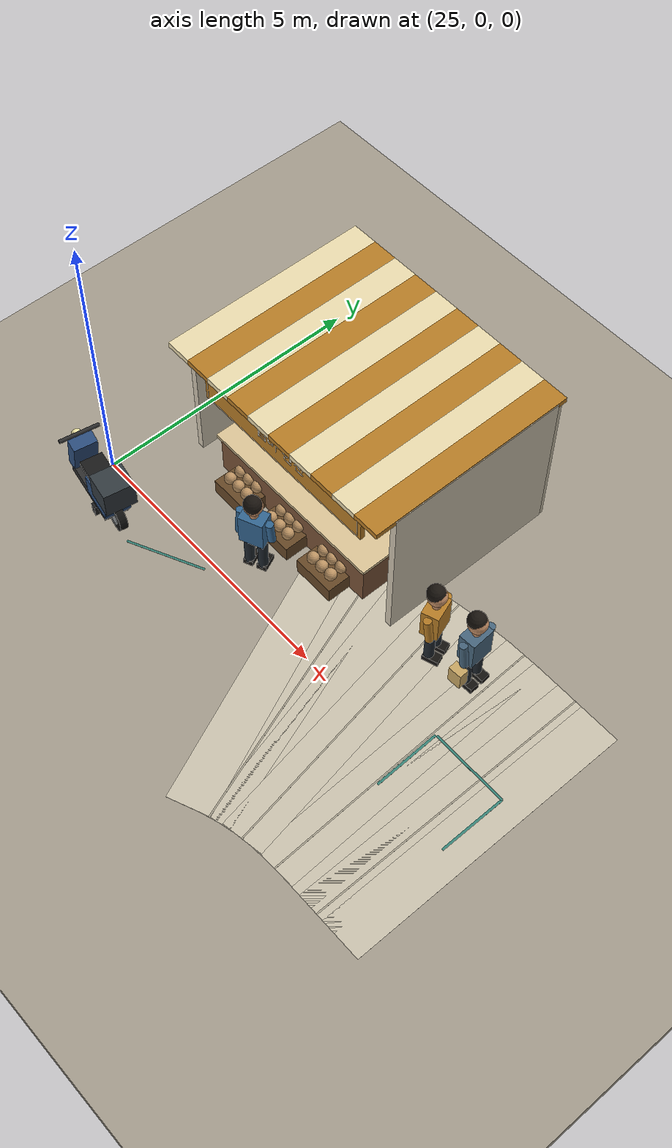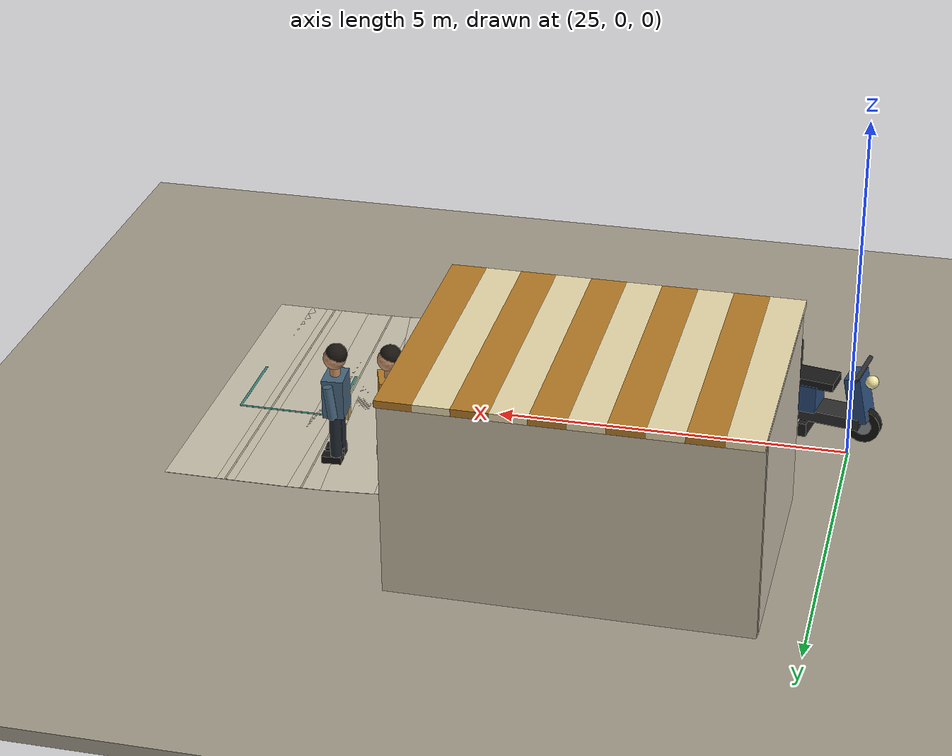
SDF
<sdf version="1.10">
 <world name="swan_town">
  <model name="ground_plane">
   <pose>-14 30 -0.025 0 0 0</pose>
   <static>true</static>
   <link name="link">
    <collision name="collision">
     <geometry><plane><normal>0 0 1</normal><size>100 100</size></plane></geometry>
    </collision>
    <visual name="visual">
     <geometry><plane><normal>0 0 1</normal><size>100 100</size></plane></geometry>
     <material><ambient>0.3 0.5 0.2 1</ambient><diffuse>0.3 0.5 0.2 1</diffuse></material>
    </visual>
   </link>
  </model>
  <model name="ground">
   <static>true</static>
   <pose>15 0 -0.1 0 0 0</pose>
   <link name="body">
    <collision name="box_collision"><geometry><box><size>46 24 0.2</size></box></geometry></collision>
    <visual name="box_visual">
     <geometry><box><size>46 24 0.2</size></box></geometry>
     <material><ambient>0.64 0.61 0.55 1</ambient><diffuse>0.64 0.61 0.55 1</diffuse></material>
    </visual>
   </link>
  </model>
  <model name="market_paving_63">
   <static>true</static>
   <pose>29.75 -0.54833 0.002 0 0 0.40225</pose>
   <link name="body">
    <visual name="box_visual">
     <geometry><box><size>0.75 5.2 0.004</size></box></geometry>
     <material><ambient>0.79 0.76 0.68 1</ambient><diffuse>0.79 0.76 0.68 1</diffuse></material>
    </visual>
   </link>
  </model>
  <model name="market_paving_64">
   <static>true</static>
   <pose>30.25 -0.35543 0.002 0 0 0.33122</pose>
   <link name="body">
    <visual name="box_visual">
     <geometry><box><size>0.75 5.2 0.004</size></box></geometry>
     <material><ambient>0.79 0.76 0.68 1</ambient><diffuse>0.79 0.76 0.68 1</diffuse></material>
    </visual>
   </link>
  </model>
  <model name="paving_joint_64">
   <static>true</static>
   <pose>30.25 -0.35543 0.0045 0 0 0.33122</pose>
   <link name="body">
    <visual name="box_visual">
     <geometry><box><size>0.025 5.2 0.001</size></box></geometry>
     <material><ambient>0.67 0.64 0.57 1</ambient><diffuse>0.67 0.64 0.57 1</diffuse></material>
    </visual>
   </link>
  </model>
  <model name="market_paving_65">
   <static>true</static>
   <pose>30.75 -0.20586 0.002 0 0 0.2486</pose>
   <link name="body">
    <visual name="box_visual">
     <geometry><box><size>0.75 5.2 0.004</size></box></geometry>
     <material><ambient>0.79 0.76 0.68 1</ambient><diffuse>0.79 0.76 0.68 1</diffuse></material>
    </visual>
   </link>
  </model>
  <model name="market_paving_66">
   <static>true</static>
   <pose>31.25 -0.10125 0.002 0 0 0.16424</pose>
   <link name="body">
    <visual name="box_visual">
     <geometry><box><size>0.75 5.2 0.004</size></box></geometry>
     <material><ambient>0.79 0.76 0.68 1</ambient><diffuse>0.79 0.76 0.68 1</diffuse></material>
    </visual>
   </link>
  </model>
  <model name="paving_joint_66">
   <static>true</static>
   <pose>31.25 -0.10125 0.0045 0 0 0.16424</pose>
   <link name="body">
    <visual name="box_visual">
     <geometry><box><size>0.025 5.2 0.001</size></box></geometry>
     <material><ambient>0.67 0.64 0.57 1</ambient><diffuse>0.67 0.64 0.57 1</diffuse></material>
    </visual>
   </link>
  </model>
  <model name="market_paving_67">
   <static>true</static>
   <pose>31.75 -0.038143 0.002 0 0 0.089204</pose>
   <link name="body">
    <visual name="box_visual">
     <geometry><box><size>0.75 5.2 0.004</size></box></geometry>
     <material><ambient>0.79 0.76 0.68 1</ambient><diffuse>0.79 0.76 0.68 1</diffuse></material>
    </visual>
   </link>
  </model>
  <model name="market_paving_68">
   <static>true</static>
   <pose>32.25 -0.0084221 0.002 0 0 0.033398</pose>
   <link name="body">
    <visual name="box_visual">
     <geometry><box><size>0.75 5.2 0.004</size></box></geometry>
     <material><ambient>0.79 0.76 0.68 1</ambient><diffuse>0.79 0.76 0.68 1</diffuse></material>
    </visual>
   </link>
  </model>
  <model name="paving_joint_68">
   <static>true</static>
   <pose>32.25 -0.0084221 0.0045 0 0 0.033398</pose>
   <link name="body">
    <visual name="box_visual">
     <geometry><box><size>0.025 5.2 0.001</size></box></geometry>
     <material><ambient>0.67 0.64 0.57 1</ambient><diffuse>0.67 0.64 0.57 1</diffuse></material>
    </visual>
   </link>
  </model>
  <model name="market_paving_69">
   <static>true</static>
   <pose>32.75 -0.00031537 0.002 0 0 0.003781</pose>
   <link name="body">
    <visual name="box_visual">
     <geometry><box><size>0.75 5.2 0.004</size></box></geometry>
     <material><ambient>0.79 0.76 0.68 1</ambient><diffuse>0.79 0.76 0.68 1</diffuse></material>
    </visual>
   </link>
  </model>
  <model name="market_paving_70">
   <static>true</static>
   <pose>33.25 0 0.002 0 0 0</pose>
   <link name="body">
    <visual name="box_visual">
     <geometry><box><size>0.75 5.2 0.004</size></box></geometry>
     <material><ambient>0.79 0.76 0.68 1</ambient><diffuse>0.79 0.76 0.68 1</diffuse></material>
    </visual>
   </link>
  </model>
  <model name="paving_joint_70">
   <static>true</static>
   <pose>33.25 0 0.0045 0 0 0</pose>
   <link name="body">
    <visual name="box_visual">
     <geometry><box><size>0.025 5.2 0.001</size></box></geometry>
     <material><ambient>0.67 0.64 0.57 1</ambient><diffuse>0.67 0.64 0.57 1</diffuse></material>
    </visual>
   </link>
  </model>
  <model name="market_paving_71">
   <static>true</static>
   <pose>33.75 0 0.002 0 0 0</pose>
   <link name="body">
    <visual name="box_visual">
     <geometry><box><size>0.75 5.2 0.004</size></box></geometry>
     <material><ambient>0.79 0.76 0.68 1</ambient><diffuse>0.79 0.76 0.68 1</diffuse></material>
    </visual>
   </link>
  </model>
  <model name="stall_03">
   <static>true</static>
   <pose>28 3.0211 0 0 0 0</pose>
   <link name="body">
    <collision name="rear_collision">
     <pose>0 1.65 1.4 0 0 0</pose>
     <geometry><box><size>4.8 0.15 2.8</size></box></geometry>
    </collision>
    <visual name="rear_visual">
     <pose>0 1.65 1.4 0 0 0</pose>
     <geometry><box><size>4.8 0.15 2.8</size></box></geometry>
     <material><ambient>0.78 0.74 0.65 1</ambient><diffuse>0.78 0.74 0.65 1</diffuse></material>
    </visual>
    <collision name="side_-2.35_collision">
     <pose>-2.35 0 1.4 0 0 0</pose>
     <geometry><box><size>0.12 3.3 2.8</size></box></geometry>
    </collision>
    <visual name="side_-2.35_visual">
     <pose>-2.35 0 1.4 0 0 0</pose>
     <geometry><box><size>0.12 3.3 2.8</size></box></geometry>
     <material><ambient>0.81 0.77 0.69 1</ambient><diffuse>0.81 0.77 0.69 1</diffuse></material>
    </visual>
    <collision name="side_2.35_collision">
     <pose>2.35 0 1.4 0 0 0</pose>
     <geometry><box><size>0.12 3.3 2.8</size></box></geometry>
    </collision>
    <visual name="side_2.35_visual">
     <pose>2.35 0 1.4 0 0 0</pose>
     <geometry><box><size>0.12 3.3 2.8</size></box></geometry>
     <material><ambient>0.81 0.77 0.69 1</ambient><diffuse>0.81 0.77 0.69 1</diffuse></material>
    </visual>
    <collision name="counter_collision">
     <pose>0 -1.22 0.4 0 0 0</pose>
     <geometry><box><size>3.5 0.85 0.8</size></box></geometry>
    </collision>
    <visual name="counter_visual">
     <pose>0 -1.22 0.4 0 0 0</pose>
     <geometry><box><size>3.5 0.85 0.8</size></box></geometry>
     <material><ambient>0.47 0.32 0.21 1</ambient><diffuse>0.47 0.32 0.21 1</diffuse></material>
    </visual>
    <collision name="counter_top_collision">
     <pose>0 -1.22 0.83 0 0 0</pose>
     <geometry><box><size>3.6 0.95 0.06</size></box></geometry>
    </collision>
    <visual name="counter_top_visual">
     <pose>0 -1.22 0.83 0 0 0</pose>
     <geometry><box><size>3.6 0.95 0.06</size></box></geometry>
     <material><ambient>0.86 0.77 0.59 1</ambient><diffuse>0.86 0.77 0.59 1</diffuse></material>
    </visual>
    <collision name="awning_0_collision">
     <pose>-2.16 -0.1 2.78 0 0 0</pose>
     <geometry><box><size>0.48 3.85 0.1</size></box></geometry>
    </collision>
    <visual name="awning_0_visual">
     <pose>-2.16 -0.1 2.78 0 0 0</pose>
     <geometry><box><size>0.48 3.85 0.1</size></box></geometry>
     <material><ambient>0.92 0.86 0.68 1</ambient><diffuse>0.92 0.86 0.68 1</diffuse></material>
    </visual>
    <collision name="awning_1_collision">
     <pose>-1.68 -0.1 2.78 0 0 0</pose>
     <geometry><box><size>0.48 3.85 0.1</size></box></geometry>
    </collision>
    <visual name="awning_1_visual">
     <pose>-1.68 -0.1 2.78 0 0 0</pose>
     <geometry><box><size>0.48 3.85 0.1</size></box></geometry>
     <material><ambient>0.72 0.49 0.15 1</ambient><diffuse>0.72 0.49 0.15 1</diffuse></material>
    </visual>
    <collision name="awning_2_collision">
     <pose>-1.2 -0.1 2.78 0 0 0</pose>
     <geometry><box><size>0.48 3.85 0.1</size></box></geometry>
    </collision>
    <visual name="awning_2_visual">
     <pose>-1.2 -0.1 2.78 0 0 0</pose>
     <geometry><box><size>0.48 3.85 0.1</size></box></geometry>
     <material><ambient>0.92 0.86 0.68 1</ambient><diffuse>0.92 0.86 0.68 1</diffuse></material>
    </visual>
    <collision name="awning_3_collision">
     <pose>-0.72 -0.1 2.78 0 0 0</pose>
     <geometry><box><size>0.48 3.85 0.1</size></box></geometry>
    </collision>
    <visual name="awning_3_visual">
     <pose>-0.72 -0.1 2.78 0 0 0</pose>
     <geometry><box><size>0.48 3.85 0.1</size></box></geometry>
     <material><ambient>0.72 0.49 0.15 1</ambient><diffuse>0.72 0.49 0.15 1</diffuse></material>
    </visual>
    <collision name="awning_4_collision">
     <pose>-0.24 -0.1 2.78 0 0 0</pose>
     <geometry><box><size>0.48 3.85 0.1</size></box></geometry>
    </collision>
    <visual name="awning_4_visual">
     <pose>-0.24 -0.1 2.78 0 0 0</pose>
     <geometry><box><size>0.48 3.85 0.1</size></box></geometry>
     <material><ambient>0.92 0.86 0.68 1</ambient><diffuse>0.92 0.86 0.68 1</diffuse></material>
    </visual>
    <collision name="awning_5_collision">
     <pose>0.24 -0.1 2.78 0 0 0</pose>
     <geometry><box><size>0.48 3.85 0.1</size></box></geometry>
    </collision>
    <visual name="awning_5_visual">
     <pose>0.24 -0.1 2.78 0 0 0</pose>
     <geometry><box><size>0.48 3.85 0.1</size></box></geometry>
     <material><ambient>0.72 0.49 0.15 1</ambient><diffuse>0.72 0.49 0.15 1</diffuse></material>
    </visual>
    <collision name="awning_6_collision">
     <pose>0.72 -0.1 2.78 0 0 0</pose>
     <geometry><box><size>0.48 3.85 0.1</size></box></geometry>
    </collision>
    <visual name="awning_6_visual">
     <pose>0.72 -0.1 2.78 0 0 0</pose>
     <geometry><box><size>0.48 3.85 0.1</size></box></geometry>
     <material><ambient>0.92 0.86 0.68 1</ambient><diffuse>0.92 0.86 0.68 1</diffuse></material>
    </visual>
    <collision name="awning_7_collision">
     <pose>1.2 -0.1 2.78 0 0 0</pose>
     <geometry><box><size>0.48 3.85 0.1</size></box></geometry>
    </collision>
    <visual name="awning_7_visual">
     <pose>1.2 -0.1 2.78 0 0 0</pose>
     <geometry><box><size>0.48 3.85 0.1</size></box></geometry>
     <material><ambient>0.72 0.49 0.15 1</ambient><diffuse>0.72 0.49 0.15 1</diffuse></material>
    </visual>
    <collision name="awning_8_collision">
     <pose>1.68 -0.1 2.78 0 0 0</pose>
     <geometry><box><size>0.48 3.85 0.1</size></box></geometry>
    </collision>
    <visual name="awning_8_visual">
     <pose>1.68 -0.1 2.78 0 0 0</pose>
     <geometry><box><size>0.48 3.85 0.1</size></box></geometry>
     <material><ambient>0.92 0.86 0.68 1</ambient><diffuse>0.92 0.86 0.68 1</diffuse></material>
    </visual>
    <collision name="awning_9_collision">
     <pose>2.16 -0.1 2.78 0 0 0</pose>
     <geometry><box><size>0.48 3.85 0.1</size></box></geometry>
    </collision>
    <visual name="awning_9_visual">
     <pose>2.16 -0.1 2.78 0 0 0</pose>
     <geometry><box><size>0.48 3.85 0.1</size></box></geometry>
     <material><ambient>0.72 0.49 0.15 1</ambient><diffuse>0.72 0.49 0.15 1</diffuse></material>
    </visual>
    <collision name="crate_-1_collision">
     <pose>-1.04 -1.77 0.15 0 0 0</pose>
     <geometry><box><size>0.78 0.6 0.3</size></box></geometry>
    </collision>
    <visual name="crate_-1_visual">
     <pose>-1.04 -1.77 0.15 0 0 0</pose>
     <geometry><box><size>0.78 0.6 0.3</size></box></geometry>
     <material><ambient>0.4 0.28 0.15 1</ambient><diffuse>0.4 0.28 0.15 1</diffuse></material>
    </visual>
    <visual name="produce_-1_0_visual">
     <pose>-1.25 -1.88 0.39 0 0 0</pose>
     <geometry><sphere><radius>0.105</radius></sphere></geometry>
     <material><ambient>0.74 0.58 0.39 1</ambient><diffuse>0.74 0.58 0.39 1</diffuse></material>
    </visual>
    <visual name="produce_-1_1_visual">
     <pose>-1.04 -1.88 0.39 0 0 0</pose>
     <geometry><sphere><radius>0.105</radius></sphere></geometry>
     <material><ambient>0.74 0.58 0.39 1</ambient><diffuse>0.74 0.58 0.39 1</diffuse></material>
    </visual>
    <visual name="produce_-1_2_visual">
     <pose>-0.83 -1.88 0.39 0 0 0</pose>
     <geometry><sphere><radius>0.105</radius></sphere></geometry>
     <material><ambient>0.74 0.58 0.39 1</ambient><diffuse>0.74 0.58 0.39 1</diffuse></material>
    </visual>
    <visual name="produce_-1_3_visual">
     <pose>-1.25 -1.66 0.39 0 0 0</pose>
     <geometry><sphere><radius>0.105</radius></sphere></geometry>
     <material><ambient>0.74 0.58 0.39 1</ambient><diffuse>0.74 0.58 0.39 1</diffuse></material>
    </visual>
    <visual name="produce_-1_4_visual">
     <pose>-1.04 -1.66 0.39 0 0 0</pose>
     <geometry><sphere><radius>0.105</radius></sphere></geometry>
     <material><ambient>0.74 0.58 0.39 1</ambient><diffuse>0.74 0.58 0.39 1</diffuse></material>
    </visual>
    <visual name="produce_-1_5_visual">
     <pose>-0.83 -1.66 0.39 0 0 0</pose>
     <geometry><sphere><radius>0.105</radius></sphere></geometry>
     <material><ambient>0.74 0.58 0.39 1</ambient><diffuse>0.74 0.58 0.39 1</diffuse></material>
    </visual>
    <collision name="crate_0_collision">
     <pose>0 -1.77 0.15 0 0 0</pose>
     <geometry><box><size>0.78 0.6 0.3</size></box></geometry>
    </collision>
    <visual name="crate_0_visual">
     <pose>0 -1.77 0.15 0 0 0</pose>
     <geometry><box><size>0.78 0.6 0.3</size></box></geometry>
     <material><ambient>0.4 0.28 0.15 1</ambient><diffuse>0.4 0.28 0.15 1</diffuse></material>
    </visual>
    <visual name="produce_0_0_visual">
     <pose>-0.21 -1.88 0.39 0 0 0</pose>
     <geometry><sphere><radius>0.105</radius></sphere></geometry>
     <material><ambient>0.74 0.58 0.39 1</ambient><diffuse>0.74 0.58 0.39 1</diffuse></material>
    </visual>
    <visual name="produce_0_1_visual">
     <pose>0 -1.88 0.39 0 0 0</pose>
     <geometry><sphere><radius>0.105</radius></sphere></geometry>
     <material><ambient>0.74 0.58 0.39 1</ambient><diffuse>0.74 0.58 0.39 1</diffuse></material>
    </visual>
    <visual name="produce_0_2_visual">
     <pose>0.21 -1.88 0.39 0 0 0</pose>
     <geometry><sphere><radius>0.105</radius></sphere></geometry>
     <material><ambient>0.74 0.58 0.39 1</ambient><diffuse>0.74 0.58 0.39 1</diffuse></material>
    </visual>
    <visual name="produce_0_3_visual">
     <pose>-0.21 -1.66 0.39 0 0 0</pose>
     <geometry><sphere><radius>0.105</radius></sphere></geometry>
     <material><ambient>0.74 0.58 0.39 1</ambient><diffuse>0.74 0.58 0.39 1</diffuse></material>
    </visual>
    <visual name="produce_0_4_visual">
     <pose>0 -1.66 0.39 0 0 0</pose>
     <geometry><sphere><radius>0.105</radius></sphere></geometry>
     <material><ambient>0.74 0.58 0.39 1</ambient><diffuse>0.74 0.58 0.39 1</diffuse></material>
    </visual>
    <visual name="produce_0_5_visual">
     <pose>0.21 -1.66 0.39 0 0 0</pose>
     <geometry><sphere><radius>0.105</radius></sphere></geometry>
     <material><ambient>0.74 0.58 0.39 1</ambient><diffuse>0.74 0.58 0.39 1</diffuse></material>
    </visual>
    <collision name="crate_1_collision">
     <pose>1.04 -1.77 0.15 0 0 0</pose>
     <geometry><box><size>0.78 0.6 0.3</size></box></geometry>
    </collision>
    <visual name="crate_1_visual">
     <pose>1.04 -1.77 0.15 0 0 0</pose>
     <geometry><box><size>0.78 0.6 0.3</size></box></geometry>
     <material><ambient>0.4 0.28 0.15 1</ambient><diffuse>0.4 0.28 0.15 1</diffuse></material>
    </visual>
    <visual name="produce_1_0_visual">
     <pose>0.83 -1.88 0.39 0 0 0</pose>
     <geometry><sphere><radius>0.105</radius></sphere></geometry>
     <material><ambient>0.74 0.58 0.39 1</ambient><diffuse>0.74 0.58 0.39 1</diffuse></material>
    </visual>
    <visual name="produce_1_1_visual">
     <pose>1.04 -1.88 0.39 0 0 0</pose>
     <geometry><sphere><radius>0.105</radius></sphere></geometry>
     <material><ambient>0.74 0.58 0.39 1</ambient><diffuse>0.74 0.58 0.39 1</diffuse></material>
    </visual>
    <visual name="produce_1_2_visual">
     <pose>1.25 -1.88 0.39 0 0 0</pose>
     <geometry><sphere><radius>0.105</radius></sphere></geometry>
     <material><ambient>0.74 0.58 0.39 1</ambient><diffuse>0.74 0.58 0.39 1</diffuse></material>
    </visual>
    <visual name="produce_1_3_visual">
     <pose>0.83 -1.66 0.39 0 0 0</pose>
     <geometry><sphere><radius>0.105</radius></sphere></geometry>
     <material><ambient>0.74 0.58 0.39 1</ambient><diffuse>0.74 0.58 0.39 1</diffuse></material>
    </visual>
    <visual name="produce_1_4_visual">
     <pose>1.04 -1.66 0.39 0 0 0</pose>
     <geometry><sphere><radius>0.105</radius></sphere></geometry>
     <material><ambient>0.74 0.58 0.39 1</ambient><diffuse>0.74 0.58 0.39 1</diffuse></material>
    </visual>
    <visual name="produce_1_5_visual">
     <pose>1.25 -1.66 0.39 0 0 0</pose>
     <geometry><sphere><radius>0.105</radius></sphere></geometry>
     <material><ambient>0.74 0.58 0.39 1</ambient><diffuse>0.74 0.58 0.39 1</diffuse></material>
    </visual>
   </link>
  </model>
  <model name="signboard_3">
   <static>true</static>
   <pose>28 1.2611 2.24 0 0 0</pose>
   <link name="body">
    <collision name="box_collision"><geometry><box><size>3.65 0.08 0.72</size></box></geometry></collision>
    <visual name="box_visual">
     <geometry><box><size>3.65 0.08 0.72</size></box></geometry>
     <material><ambient>0.72 0.49 0.15 1</ambient><diffuse>0.72 0.49 0.15 1</diffuse></material>
    </visual>
   </link>
  </model>
  <model name="sign_shop_3">
   <static>true</static>
   <pose>28 1.2131 2.24 0 0 0</pose>
   <link name="body">
    <visual name="top_visual">
     <pose>0 -0.003 0.32062 0 0 0</pose>
     <geometry><box><size>3.5136 0.003 0.0108</size></box></geometry>
     <material><ambient>1 0.961 0.875 1</ambient><diffuse>1 0.961 0.875 1</diffuse></material>
    </visual>
    <visual name="bottom_visual">
     <pose>0 -0.003 -0.32062 0 0 0</pose>
     <geometry><box><size>3.5136 0.003 0.0108</size></box></geometry>
     <material><ambient>1 0.961 0.875 1</ambient><diffuse>1 0.961 0.875 1</diffuse></material>
    </visual>
    <visual name="left_visual">
     <pose>-1.7568 -0.003 0 0 0 0</pose>
     <geometry><box><size>0.0108 0.003 0.64125</size></box></geometry>
     <material><ambient>1 0.961 0.875 1</ambient><diffuse>1 0.961 0.875 1</diffuse></material>
    </visual>
    <visual name="right_visual">
     <pose>1.7568 -0.003 0 0 0 0</pose>
     <geometry><box><size>0.0108 0.003 0.64125</size></box></geometry>
     <material><ambient>1 0.961 0.875 1</ambient><diffuse>1 0.961 0.875 1</diffuse></material>
    </visual>
    <visual name="ink_0_visual">
     <pose>-0.49687 -0.003 0.14062 0 0 0</pose>
     <geometry><box><size>0.09375 0.003 0.01875</size></box></geometry>
     <material><ambient>1 0.961 0.875 1</ambient><diffuse>1 0.961 0.875 1</diffuse></material>
    </visual>
    <visual name="ink_1_visual">
     <pose>-0.225 -0.003 0.14062 0 0 0</pose>
     <geometry><box><size>0.1125 0.003 0.01875</size></box></geometry>
     <material><ambient>1 0.961 0.875 1</ambient><diffuse>1 0.961 0.875 1</diffuse></material>
    </visual>
    <visual name="ink_2_visual">
     <pose>0.39375 -0.003 0.14062 0 0 0</pose>
     <geometry><box><size>0.075 0.003 0.01875</size></box></geometry>
     <material><ambient>1 0.961 0.875 1</ambient><diffuse>1 0.961 0.875 1</diffuse></material>
    </visual>
    <visual name="ink_3_visual">
     <pose>-0.45 -0.003 0.12188 0 0 0</pose>
     <geometry><box><size>0.0375 0.003 0.01875</size></box></geometry>
     <material><ambient>1 0.961 0.875 1</ambient><diffuse>1 0.961 0.875 1</diffuse></material>
    </visual>
    <visual name="ink_4_visual">
     <pose>-0.35625 -0.003 0.14062 0 0 0</pose>
     <geometry><box><size>0.0375 0.003 0.05625</size></box></geometry>
     <material><ambient>1 0.961 0.875 1</ambient><diffuse>1 0.961 0.875 1</diffuse></material>
    </visual>
    <visual name="ink_5_visual">
     <pose>-0.23438 -0.003 0.12188 0 0 0</pose>
     <geometry><box><size>0.13125 0.003 0.01875</size></box></geometry>
     <material><ambient>1 0.961 0.875 1</ambient><diffuse>1 0.961 0.875 1</diffuse></material>
    </visual>
    <visual name="ink_6_visual">
     <pose>0.075 -0.003 0.13125 0 0 0</pose>
     <geometry><box><size>0.0375 0.003 0.0375</size></box></geometry>
     <material><ambient>1 0.961 0.875 1</ambient><diffuse>1 0.961 0.875 1</diffuse></material>
    </visual>
    <visual name="ink_7_visual">
     <pose>0.17812 -0.003 0.13125 0 0 0</pose>
     <geometry><box><size>0.01875 0.003 0.0375</size></box></geometry>
     <material><ambient>1 0.961 0.875 1</ambient><diffuse>1 0.961 0.875 1</diffuse></material>
    </visual>
    <visual name="ink_8_visual">
     <pose>-0.54375 -0.003 0.1125 0 0 0</pose>
     <geometry><box><size>0.0375 0.003 0.0375</size></box></geometry>
     <material><ambient>1 0.961 0.875 1</ambient><diffuse>1 0.961 0.875 1</diffuse></material>
    </visual>
    <visual name="ink_9_visual">
     <pose>-0.43125 -0.003 0.10313 0 0 0</pose>
     <geometry><box><size>0.0375 0.003 0.01875</size></box></geometry>
     <material><ambient>1 0.961 0.875 1</ambient><diffuse>1 0.961 0.875 1</diffuse></material>
    </visual>
    <visual name="ink_10_visual">
     <pose>-0.36563 -0.003 0.10313 0 0 0</pose>
     <geometry><box><size>0.05625 0.003 0.01875</size></box></geometry>
     <material><ambient>1 0.961 0.875 1</ambient><diffuse>1 0.961 0.875 1</diffuse></material>
    </visual>
    <visual name="ink_11_visual">
     <pose>0.24375 -0.003 0.13125 0 0 0</pose>
     <geometry><box><size>0.0375 0.003 0.075</size></box></geometry>
     <material><ambient>1 0.961 0.875 1</ambient><diffuse>1 0.961 0.875 1</diffuse></material>
    </visual>
    <visual name="ink_12_visual">
     <pose>0.39375 -0.003 0.10313 0 0 0</pose>
     <geometry><box><size>0.15 0.003 0.01875</size></box></geometry>
     <material><ambient>1 0.961 0.875 1</ambient><diffuse>1 0.961 0.875 1</diffuse></material>
    </visual>
    <visual name="ink_13_visual">
     <pose>0.51562 -0.003 0.13125 0 0 0</pose>
     <geometry><box><size>0.01875 0.003 0.075</size></box></geometry>
     <material><ambient>1 0.961 0.875 1</ambient><diffuse>1 0.961 0.875 1</diffuse></material>
    </visual>
    <visual name="ink_14_visual">
     <pose>-0.55312 -0.003 0.084375 0 0 0</pose>
     <geometry><box><size>0.01875 0.003 0.01875</size></box></geometry>
     <material><ambient>1 0.961 0.875 1</ambient><diffuse>1 0.961 0.875 1</diffuse></material>
    </visual>
    <visual name="ink_15_visual">
     <pose>-0.39375 -0.003 0.084375 0 0 0</pose>
     <geometry><box><size>0.1125 0.003 0.01875</size></box></geometry>
     <material><ambient>1 0.961 0.875 1</ambient><diffuse>1 0.961 0.875 1</diffuse></material>
    </visual>
    <visual name="ink_16_visual">
     <pose>-0.10312 -0.003 0.12188 0 0 0</pose>
     <geometry><box><size>0.01875 0.003 0.09375</size></box></geometry>
     <material><ambient>1 0.961 0.875 1</ambient><diffuse>1 0.961 0.875 1</diffuse></material>
    </visual>
    <visual name="ink_17_visual">
     <pose>0.12187 -0.003 0.09375 0 0 0</pose>
     <geometry><box><size>0.13125 0.003 0.0375</size></box></geometry>
     <material><ambient>1 0.961 0.875 1</ambient><diffuse>1 0.961 0.875 1</diffuse></material>
    </visual>
    <visual name="ink_18_visual">
     <pose>-0.54375 -0.003 0.065625 0 0 0</pose>
     <geometry><box><size>0.0375 0.003 0.01875</size></box></geometry>
     <material><ambient>1 0.961 0.875 1</ambient><diffuse>1 0.961 0.875 1</diffuse></material>
    </visual>
    <visual name="ink_19_visual">
     <pose>-0.44062 -0.003 0.065625 0 0 0</pose>
     <geometry><box><size>0.01875 0.003 0.01875</size></box></geometry>
     <material><ambient>1 0.961 0.875 1</ambient><diffuse>1 0.961 0.875 1</diffuse></material>
    </visual>
    <visual name="ink_20_visual">
     <pose>-0.09375 -0.003 0.065625 0 0 0</pose>
     <geometry><box><size>0.0375 0.003 0.01875</size></box></geometry>
     <material><ambient>1 0.961 0.875 1</ambient><diffuse>1 0.961 0.875 1</diffuse></material>
    </visual>
    <visual name="ink_21_visual">
     <pose>0.2625 -0.003 0.075 0 0 0</pose>
     <geometry><box><size>0.075 0.003 0.0375</size></box></geometry>
     <material><ambient>1 0.961 0.875 1</ambient><diffuse>1 0.961 0.875 1</diffuse></material>
    </visual>
    <visual name="ink_22_visual">
     <pose>0.39375 -0.003 0.075 0 0 0</pose>
     <geometry><box><size>0.0375 0.003 0.0375</size></box></geometry>
     <material><ambient>1 0.961 0.875 1</ambient><diffuse>1 0.961 0.875 1</diffuse></material>
    </visual>
    <visual name="ink_23_visual">
     <pose>0.53438 -0.003 0.075 0 0 0</pose>
     <geometry><box><size>0.05625 0.003 0.0375</size></box></geometry>
     <material><ambient>1 0.961 0.875 1</ambient><diffuse>1 0.961 0.875 1</diffuse></material>
    </visual>
    <visual name="ink_24_visual">
     <pose>-0.4875 -0.003 0.046875 0 0 0</pose>
     <geometry><box><size>0.1125 0.003 0.01875</size></box></geometry>
     <material><ambient>1 0.961 0.875 1</ambient><diffuse>1 0.961 0.875 1</diffuse></material>
    </visual>
    <visual name="ink_25_visual">
     <pose>-0.075 -0.003 0.046875 0 0 0</pose>
     <geometry><box><size>0.075 0.003 0.01875</size></box></geometry>
     <material><ambient>1 0.961 0.875 1</ambient><diffuse>1 0.961 0.875 1</diffuse></material>
    </visual>
    <visual name="ink_26_visual">
     <pose>0.075 -0.003 0.05625 0 0 0</pose>
     <geometry><box><size>0.0375 0.003 0.0375</size></box></geometry>
     <material><ambient>1 0.961 0.875 1</ambient><diffuse>1 0.961 0.875 1</diffuse></material>
    </visual>
    <visual name="ink_27_visual">
     <pose>0.17812 -0.003 0.05625 0 0 0</pose>
     <geometry><box><size>0.01875 0.003 0.0375</size></box></geometry>
     <material><ambient>1 0.961 0.875 1</ambient><diffuse>1 0.961 0.875 1</diffuse></material>
    </visual>
    <visual name="ink_28_visual">
     <pose>0.39375 -0.003 0.046875 0 0 0</pose>
     <geometry><box><size>0.075 0.003 0.01875</size></box></geometry>
     <material><ambient>1 0.961 0.875 1</ambient><diffuse>1 0.961 0.875 1</diffuse></material>
    </visual>
    <visual name="ink_29_visual">
     <pose>-0.49687 -0.003 0.028125 0 0 0</pose>
     <geometry><box><size>0.05625 0.003 0.01875</size></box></geometry>
     <material><ambient>1 0.961 0.875 1</ambient><diffuse>1 0.961 0.875 1</diffuse></material>
    </visual>
    <visual name="ink_30_visual">
     <pose>-0.35625 -0.003 0.046875 0 0 0</pose>
     <geometry><box><size>0.0375 0.003 0.05625</size></box></geometry>
     <material><ambient>1 0.961 0.875 1</ambient><diffuse>1 0.961 0.875 1</diffuse></material>
    </visual>
    <visual name="ink_31_visual">
     <pose>0.12187 -0.003 0.028125 0 0 0</pose>
     <geometry><box><size>0.13125 0.003 0.01875</size></box></geometry>
     <material><ambient>1 0.961 0.875 1</ambient><diffuse>1 0.961 0.875 1</diffuse></material>
    </visual>
    <visual name="ink_32_visual">
     <pose>0.35625 -0.003 0.028125 0 0 0</pose>
     <geometry><box><size>0.0375 0.003 0.01875</size></box></geometry>
     <material><ambient>1 0.961 0.875 1</ambient><diffuse>1 0.961 0.875 1</diffuse></material>
    </visual>
    <visual name="ink_33_visual">
     <pose>0.43125 -0.003 0.028125 0 0 0</pose>
     <geometry><box><size>0.0375 0.003 0.01875</size></box></geometry>
     <material><ambient>1 0.961 0.875 1</ambient><diffuse>1 0.961 0.875 1</diffuse></material>
    </visual>
    <visual name="ink_34_visual">
     <pose>0.14062 -0.003 0.009375 0 0 0</pose>
     <geometry><box><size>0.05625 0.003 0.01875</size></box></geometry>
     <material><ambient>1 0.961 0.875 1</ambient><diffuse>1 0.961 0.875 1</diffuse></material>
    </visual>
    <visual name="ink_35_visual">
     <pose>0.3375 -0.003 0.009375 0 0 0</pose>
     <geometry><box><size>0.0375 0.003 0.01875</size></box></geometry>
     <material><ambient>1 0.961 0.875 1</ambient><diffuse>1 0.961 0.875 1</diffuse></material>
    </visual>
    <visual name="ink_36_visual">
     <pose>0.45 -0.003 0.009375 0 0 0</pose>
     <geometry><box><size>0.0375 0.003 0.01875</size></box></geometry>
     <material><ambient>1 0.961 0.875 1</ambient><diffuse>1 0.961 0.875 1</diffuse></material>
    </visual>
    <visual name="ink_37_visual">
     <pose>-0.43125 -0.003 -0.009375 0 0 0</pose>
     <geometry><box><size>0.1875 0.003 0.01875</size></box></geometry>
     <material><ambient>1 0.961 0.875 1</ambient><diffuse>1 0.961 0.875 1</diffuse></material>
    </visual>
    <visual name="ink_38_visual">
     <pose>-0.28125 -0.003 0.046875 0 0 0</pose>
     <geometry><box><size>0.0375 0.003 0.13125</size></box></geometry>
     <material><ambient>1 0.961 0.875 1</ambient><diffuse>1 0.961 0.875 1</diffuse></material>
    </visual>
    <visual name="ink_39_visual">
     <pose>-0.17813 -0.003 0.046875 0 0 0</pose>
     <geometry><box><size>0.01875 0.003 0.13125</size></box></geometry>
     <material><ambient>1 0.961 0.875 1</ambient><diffuse>1 0.961 0.875 1</diffuse></material>
    </visual>
    <visual name="ink_40_visual">
     <pose>0.24375 -0.003 0.01875 0 0 0</pose>
     <geometry><box><size>0.0375 0.003 0.075</size></box></geometry>
     <material><ambient>1 0.961 0.875 1</ambient><diffuse>1 0.961 0.875 1</diffuse></material>
    </visual>
    <visual name="ink_41_visual">
     <pose>-0.225 -0.003 -0.028125 0 0 0</pose>
     <geometry><box><size>0.1125 0.003 0.01875</size></box></geometry>
     <material><ambient>1 0.961 0.875 1</ambient><diffuse>1 0.961 0.875 1</diffuse></material>
    </visual>
    <visual name="ink_42_visual">
     <pose>0.25312 -0.003 -0.028125 0 0 0</pose>
     <geometry><box><size>0.01875 0.003 0.01875</size></box></geometry>
     <material><ambient>1 0.961 0.875 1</ambient><diffuse>1 0.961 0.875 1</diffuse></material>
    </visual>
    <visual name="ink_43_visual">
     <pose>0.51562 -0.003 0.009375 0 0 0</pose>
     <geometry><box><size>0.01875 0.003 0.09375</size></box></geometry>
     <material><ambient>1 0.961 0.875 1</ambient><diffuse>1 0.961 0.875 1</diffuse></material>
    </visual>
    <visual name="ink_44_visual">
     <pose>-0.50625 -0.003 -0.046875 0 0 0</pose>
     <geometry><box><size>0.0375 0.003 0.05625</size></box></geometry>
     <material><ambient>1 0.961 0.875 1</ambient><diffuse>1 0.961 0.875 1</diffuse></material>
    </visual>
    <visual name="ink_45_visual">
     <pose>-0.35625 -0.003 -0.046875 0 0 0</pose>
     <geometry><box><size>0.0375 0.003 0.05625</size></box></geometry>
     <material><ambient>1 0.961 0.875 1</ambient><diffuse>1 0.961 0.875 1</diffuse></material>
    </visual>
    <visual name="ink_46_visual">
     <pose>0.09375 -0.003 -0.046875 0 0 0</pose>
     <geometry><box><size>0.0375 0.003 0.05625</size></box></geometry>
     <material><ambient>1 0.961 0.875 1</ambient><diffuse>1 0.961 0.875 1</diffuse></material>
    </visual>
    <visual name="ink_47_visual">
     <pose>0.36563 -0.003 -0.046875 0 0 0</pose>
     <geometry><box><size>0.01875 0.003 0.05625</size></box></geometry>
     <material><ambient>1 0.961 0.875 1</ambient><diffuse>1 0.961 0.875 1</diffuse></material>
    </visual>
    <visual name="ink_48_visual">
     <pose>-0.43125 -0.003 -0.084375 0 0 0</pose>
     <geometry><box><size>0.1875 0.003 0.01875</size></box></geometry>
     <material><ambient>1 0.961 0.875 1</ambient><diffuse>1 0.961 0.875 1</diffuse></material>
    </visual>
    <visual name="ink_49_visual">
     <pose>0.17812 -0.003 -0.084375 0 0 0</pose>
     <geometry><box><size>0.16875 0.003 0.01875</size></box></geometry>
     <material><ambient>1 0.961 0.875 1</ambient><diffuse>1 0.961 0.875 1</diffuse></material>
    </visual>
    <visual name="ink_50_visual">
     <pose>0.45 -0.003 -0.084375 0 0 0</pose>
     <geometry><box><size>0.1875 0.003 0.01875</size></box></geometry>
     <material><ambient>1 0.961 0.875 1</ambient><diffuse>1 0.961 0.875 1</diffuse></material>
    </visual>
    <visual name="ink_51_visual">
     <pose>-0.10312 -0.003 -0.0375 0 0 0</pose>
     <geometry><box><size>0.01875 0.003 0.15</size></box></geometry>
     <material><ambient>1 0.961 0.875 1</ambient><diffuse>1 0.961 0.875 1</diffuse></material>
    </visual>
   </link>
  </model>
  <model name="shopper_exit">
   <static>true</static>
   <pose>31.901 1.6773 0 0 0 0.058381</pose>
   <link name="body">
    <collision name="leg_-1_collision">
     <pose>0 -0.12 0.4 0 0 0</pose>
     <geometry><cylinder><radius>0.085</radius><length>0.68</length></cylinder></geometry>
    </collision>
    <visual name="leg_-1_visual">
     <pose>0 -0.12 0.4 0 0 0</pose>
     <geometry><cylinder><radius>0.085</radius><length>0.68</length></cylinder></geometry>
     <material><ambient>0.12 0.15 0.18 1</ambient><diffuse>0.12 0.15 0.18 1</diffuse></material>
    </visual>
    <collision name="shoe_-1_collision">
     <pose>0.06 -0.12 0.055 0 0 0</pose>
     <geometry><box><size>0.28 0.17 0.11</size></box></geometry>
    </collision>
    <visual name="shoe_-1_visual">
     <pose>0.06 -0.12 0.055 0 0 0</pose>
     <geometry><box><size>0.28 0.17 0.11</size></box></geometry>
     <material><ambient>0.08 0.07 0.06 1</ambient><diffuse>0.08 0.07 0.06 1</diffuse></material>
    </visual>
    <collision name="arm_-1_collision">
     <pose>0.02 -0.27 1.02 0 -0.12 0</pose>
     <geometry><cylinder><radius>0.068</radius><length>0.48</length></cylinder></geometry>
    </collision>
    <visual name="arm_-1_visual">
     <pose>0.02 -0.27 1.02 0 -0.12 0</pose>
     <geometry><cylinder><radius>0.068</radius><length>0.48</length></cylinder></geometry>
     <material><ambient>0.28 0.4 0.49 1</ambient><diffuse>0.28 0.4 0.49 1</diffuse></material>
    </visual>
    <collision name="leg_1_collision">
     <pose>0 0.12 0.4 0 0 0</pose>
     <geometry><cylinder><radius>0.085</radius><length>0.68</length></cylinder></geometry>
    </collision>
    <visual name="leg_1_visual">
     <pose>0 0.12 0.4 0 0 0</pose>
     <geometry><cylinder><radius>0.085</radius><length>0.68</length></cylinder></geometry>
     <material><ambient>0.12 0.15 0.18 1</ambient><diffuse>0.12 0.15 0.18 1</diffuse></material>
    </visual>
    <collision name="shoe_1_collision">
     <pose>0.06 0.12 0.055 0 0 0</pose>
     <geometry><box><size>0.28 0.17 0.11</size></box></geometry>
    </collision>
    <visual name="shoe_1_visual">
     <pose>0.06 0.12 0.055 0 0 0</pose>
     <geometry><box><size>0.28 0.17 0.11</size></box></geometry>
     <material><ambient>0.08 0.07 0.06 1</ambient><diffuse>0.08 0.07 0.06 1</diffuse></material>
    </visual>
    <collision name="arm_1_collision">
     <pose>0.02 0.27 1.02 0 0.12 0</pose>
     <geometry><cylinder><radius>0.068</radius><length>0.48</length></cylinder></geometry>
    </collision>
    <visual name="arm_1_visual">
     <pose>0.02 0.27 1.02 0 0.12 0</pose>
     <geometry><cylinder><radius>0.068</radius><length>0.48</length></cylinder></geometry>
     <material><ambient>0.28 0.4 0.49 1</ambient><diffuse>0.28 0.4 0.49 1</diffuse></material>
    </visual>
    <collision name="torso_collision">
     <pose>0 0 1.02 0 0 0</pose>
     <geometry><box><size>0.3 0.43 0.58</size></box></geometry>
    </collision>
    <visual name="torso_visual">
     <pose>0 0 1.02 0 0 0</pose>
     <geometry><box><size>0.3 0.43 0.58</size></box></geometry>
     <material><ambient>0.28 0.4 0.49 1</ambient><diffuse>0.28 0.4 0.49 1</diffuse></material>
    </visual>
    <visual name="neck_visual">
     <pose>0 0 1.37 0 0 0</pose>
     <geometry><cylinder><radius>0.07</radius><length>0.13</length></cylinder></geometry>
     <material><ambient>0.77 0.56 0.4 1</ambient><diffuse>0.77 0.56 0.4 1</diffuse></material>
    </visual>
    <collision name="head_collision">
     <pose>0 0 1.57 0 0 0</pose>
     <geometry><sphere><radius>0.16</radius></sphere></geometry>
    </collision>
    <visual name="head_visual">
     <pose>0 0 1.57 0 0 0</pose>
     <geometry><sphere><radius>0.16</radius></sphere></geometry>
     <material><ambient>0.77 0.56 0.4 1</ambient><diffuse>0.77 0.56 0.4 1</diffuse></material>
    </visual>
    <visual name="hair_visual">
     <pose>-0.025 0 1.63 0 0 0</pose>
     <geometry><sphere><radius>0.155</radius></sphere></geometry>
     <material><ambient>0.1 0.08 0.06 1</ambient><diffuse>0.1 0.08 0.06 1</diffuse></material>
    </visual>
    <collision name="shopping_bag_collision">
     <pose>0.04 -0.38 0.6 0 0 0</pose>
     <geometry><box><size>0.24 0.17 0.33</size></box></geometry>
    </collision>
    <visual name="shopping_bag_visual">
     <pose>0.04 -0.38 0.6 0 0 0</pose>
     <geometry><box><size>0.24 0.17 0.33</size></box></geometry>
     <material><ambient>0.78 0.65 0.39 1</ambient><diffuse>0.78 0.65 0.39 1</diffuse></material>
    </visual>
   </link>
  </model>
  <model name="motorcycle_parked">
   <static>true</static>
   <pose>25.448 -0.54924 0 0 0 2.9627</pose>
   <link name="body">
    <collision name="tire_0_collision">
     <pose>-0.61 0 0.25 1.5708 0 0</pose>
     <geometry><cylinder><radius>0.25</radius><length>0.14</length></cylinder></geometry>
    </collision>
    <visual name="tire_0_visual">
     <pose>-0.61 0 0.25 1.5708 0 0</pose>
     <geometry><cylinder><radius>0.25</radius><length>0.14</length></cylinder></geometry>
     <material><ambient>0.075 0.075 0.07 1</ambient><diffuse>0.075 0.075 0.07 1</diffuse></material>
    </visual>
    <visual name="hub_0_visual">
     <pose>-0.61 0 0.25 1.5708 0 0</pose>
     <geometry><cylinder><radius>0.13</radius><length>0.145</length></cylinder></geometry>
     <material><ambient>0.57 0.59 0.6 1</ambient><diffuse>0.57 0.59 0.6 1</diffuse></material>
    </visual>
    <collision name="tire_1_collision">
     <pose>0.62 0 0.25 1.5708 0 0</pose>
     <geometry><cylinder><radius>0.25</radius><length>0.14</length></cylinder></geometry>
    </collision>
    <visual name="tire_1_visual">
     <pose>0.62 0 0.25 1.5708 0 0</pose>
     <geometry><cylinder><radius>0.25</radius><length>0.14</length></cylinder></geometry>
     <material><ambient>0.075 0.075 0.07 1</ambient><diffuse>0.075 0.075 0.07 1</diffuse></material>
    </visual>
    <visual name="hub_1_visual">
     <pose>0.62 0 0.25 1.5708 0 0</pose>
     <geometry><cylinder><radius>0.13</radius><length>0.145</length></cylinder></geometry>
     <material><ambient>0.57 0.59 0.6 1</ambient><diffuse>0.57 0.59 0.6 1</diffuse></material>
    </visual>
    <collision name="deck_collision">
     <pose>0 0 0.33 0 0 0</pose>
     <geometry><box><size>1.2 0.43 0.17</size></box></geometry>
    </collision>
    <visual name="deck_visual">
     <pose>0 0 0.33 0 0 0</pose>
     <geometry><box><size>1.2 0.43 0.17</size></box></geometry>
     <material><ambient>0.18 0.18 0.18 1</ambient><diffuse>0.18 0.18 0.18 1</diffuse></material>
    </visual>
    <collision name="rear_body_collision">
     <pose>-0.36 0 0.59 0 0 0</pose>
     <geometry><box><size>0.65 0.46 0.4</size></box></geometry>
    </collision>
    <visual name="rear_body_visual">
     <pose>-0.36 0 0.59 0 0 0</pose>
     <geometry><box><size>0.65 0.46 0.4</size></box></geometry>
     <material><ambient>0.17 0.3 0.48 1</ambient><diffuse>0.17 0.3 0.48 1</diffuse></material>
    </visual>
    <collision name="seat_collision">
     <pose>-0.2 0 0.83 0 0 0</pose>
     <geometry><box><size>0.8 0.4 0.12</size></box></geometry>
    </collision>
    <visual name="seat_visual">
     <pose>-0.2 0 0.83 0 0 0</pose>
     <geometry><box><size>0.8 0.4 0.12</size></box></geometry>
     <material><ambient>0.1 0.1 0.1 1</ambient><diffuse>0.1 0.1 0.1 1</diffuse></material>
    </visual>
    <collision name="front_fairing_collision">
     <pose>0.53 0 0.69 0 -0.2 0</pose>
     <geometry><box><size>0.23 0.43 0.69</size></box></geometry>
    </collision>
    <visual name="front_fairing_visual">
     <pose>0.53 0 0.69 0 -0.2 0</pose>
     <geometry><box><size>0.23 0.43 0.69</size></box></geometry>
     <material><ambient>0.17 0.3 0.48 1</ambient><diffuse>0.17 0.3 0.48 1</diffuse></material>
    </visual>
    <collision name="handlebar_collision">
     <pose>0.56 0 1.12 1.5708 0 0</pose>
     <geometry><cylinder><radius>0.035</radius><length>0.72</length></cylinder></geometry>
    </collision>
    <visual name="handlebar_visual">
     <pose>0.56 0 1.12 1.5708 0 0</pose>
     <geometry><cylinder><radius>0.035</radius><length>0.72</length></cylinder></geometry>
     <material><ambient>0.18 0.18 0.18 1</ambient><diffuse>0.18 0.18 0.18 1</diffuse></material>
    </visual>
    <visual name="headlight_visual">
     <pose>0.7 0 0.94 0 0 0</pose>
     <geometry><sphere><radius>0.095</radius></sphere></geometry>
     <material><ambient>0.96 0.92 0.66 1</ambient><diffuse>0.96 0.92 0.66 1</diffuse></material>
    </visual>
    <collision name="delivery_box_collision">
     <pose>-0.65 0 1.01 0 0 0</pose>
     <geometry><box><size>0.51 0.55 0.48</size></box></geometry>
    </collision>
    <visual name="delivery_box_visual">
     <pose>-0.65 0 1.01 0 0 0</pose>
     <geometry><box><size>0.51 0.55 0.48</size></box></geometry>
     <material><ambient>0.2 0.23 0.25 1</ambient><diffuse>0.2 0.23 0.25 1</diffuse></material>
    </visual>
    <collision name="stand_collision">
     <pose>-0.2 0 0.1 0 0 0</pose>
     <geometry><box><size>0.12 0.5 0.2</size></box></geometry>
    </collision>
    <visual name="stand_visual">
     <pose>-0.2 0 0.1 0 0 0</pose>
     <geometry><box><size>0.12 0.5 0.2</size></box></geometry>
     <material><ambient>0.12 0.12 0.12 1</ambient><diffuse>0.12 0.12 0.12 1</diffuse></material>
    </visual>
   </link>
  </model>
  <model name="crowd_10">
   <static>true</static>
   <pose>28.119 0.55542 0 0 0 1.9776</pose>
   <link name="body">
    <collision name="leg_-1_collision">
     <pose>0 -0.12 0.4 0 0 0</pose>
     <geometry><cylinder><radius>0.085</radius><length>0.68</length></cylinder></geometry>
    </collision>
    <visual name="leg_-1_visual">
     <pose>0 -0.12 0.4 0 0 0</pose>
     <geometry><cylinder><radius>0.085</radius><length>0.68</length></cylinder></geometry>
     <material><ambient>0.12 0.15 0.18 1</ambient><diffuse>0.12 0.15 0.18 1</diffuse></material>
    </visual>
    <collision name="shoe_-1_collision">
     <pose>0.06 -0.12 0.055 0 0 0</pose>
     <geometry><box><size>0.28 0.17 0.11</size></box></geometry>
    </collision>
    <visual name="shoe_-1_visual">
     <pose>0.06 -0.12 0.055 0 0 0</pose>
     <geometry><box><size>0.28 0.17 0.11</size></box></geometry>
     <material><ambient>0.08 0.07 0.06 1</ambient><diffuse>0.08 0.07 0.06 1</diffuse></material>
    </visual>
    <collision name="arm_-1_collision">
     <pose>0.02 -0.27 1.02 0 -0.12 0</pose>
     <geometry><cylinder><radius>0.068</radius><length>0.48</length></cylinder></geometry>
    </collision>
    <visual name="arm_-1_visual">
     <pose>0.02 -0.27 1.02 0 -0.12 0</pose>
     <geometry><cylinder><radius>0.068</radius><length>0.48</length></cylinder></geometry>
     <material><ambient>0.2 0.4 0.57 1</ambient><diffuse>0.2 0.4 0.57 1</diffuse></material>
    </visual>
    <collision name="leg_1_collision">
     <pose>0 0.12 0.4 0 0 0</pose>
     <geometry><cylinder><radius>0.085</radius><length>0.68</length></cylinder></geometry>
    </collision>
    <visual name="leg_1_visual">
     <pose>0 0.12 0.4 0 0 0</pose>
     <geometry><cylinder><radius>0.085</radius><length>0.68</length></cylinder></geometry>
     <material><ambient>0.12 0.15 0.18 1</ambient><diffuse>0.12 0.15 0.18 1</diffuse></material>
    </visual>
    <collision name="shoe_1_collision">
     <pose>0.06 0.12 0.055 0 0 0</pose>
     <geometry><box><size>0.28 0.17 0.11</size></box></geometry>
    </collision>
    <visual name="shoe_1_visual">
     <pose>0.06 0.12 0.055 0 0 0</pose>
     <geometry><box><size>0.28 0.17 0.11</size></box></geometry>
     <material><ambient>0.08 0.07 0.06 1</ambient><diffuse>0.08 0.07 0.06 1</diffuse></material>
    </visual>
    <collision name="arm_1_collision">
     <pose>0.02 0.27 1.02 0 0.12 0</pose>
     <geometry><cylinder><radius>0.068</radius><length>0.48</length></cylinder></geometry>
    </collision>
    <visual name="arm_1_visual">
     <pose>0.02 0.27 1.02 0 0.12 0</pose>
     <geometry><cylinder><radius>0.068</radius><length>0.48</length></cylinder></geometry>
     <material><ambient>0.2 0.4 0.57 1</ambient><diffuse>0.2 0.4 0.57 1</diffuse></material>
    </visual>
    <collision name="torso_collision">
     <pose>0 0 1.02 0 0 0</pose>
     <geometry><box><size>0.3 0.43 0.58</size></box></geometry>
    </collision>
    <visual name="torso_visual">
     <pose>0 0 1.02 0 0 0</pose>
     <geometry><box><size>0.3 0.43 0.58</size></box></geometry>
     <material><ambient>0.2 0.4 0.57 1</ambient><diffuse>0.2 0.4 0.57 1</diffuse></material>
    </visual>
    <visual name="neck_visual">
     <pose>0 0 1.37 0 0 0</pose>
     <geometry><cylinder><radius>0.07</radius><length>0.13</length></cylinder></geometry>
     <material><ambient>0.77 0.56 0.4 1</ambient><diffuse>0.77 0.56 0.4 1</diffuse></material>
    </visual>
    <collision name="head_collision">
     <pose>0 0 1.57 0 0 0</pose>
     <geometry><sphere><radius>0.16</radius></sphere></geometry>
    </collision>
    <visual name="head_visual">
     <pose>0 0 1.57 0 0 0</pose>
     <geometry><sphere><radius>0.16</radius></sphere></geometry>
     <material><ambient>0.77 0.56 0.4 1</ambient><diffuse>0.77 0.56 0.4 1</diffuse></material>
    </visual>
    <visual name="hair_visual">
     <pose>-0.025 0 1.63 0 0 0</pose>
     <geometry><sphere><radius>0.155</radius></sphere></geometry>
     <material><ambient>0.1 0.08 0.06 1</ambient><diffuse>0.1 0.08 0.06 1</diffuse></material>
    </visual>
   </link>
  </model>
  <model name="crowd_11">
   <static>true</static>
   <pose>31.169 1.5555 0 0 0 0.34026</pose>
   <link name="body">
    <collision name="leg_-1_collision">
     <pose>0 -0.12 0.4 0 0 0</pose>
     <geometry><cylinder><radius>0.085</radius><length>0.68</length></cylinder></geometry>
    </collision>
    <visual name="leg_-1_visual">
     <pose>0 -0.12 0.4 0 0 0</pose>
     <geometry><cylinder><radius>0.085</radius><length>0.68</length></cylinder></geometry>
     <material><ambient>0.12 0.15 0.18 1</ambient><diffuse>0.12 0.15 0.18 1</diffuse></material>
    </visual>
    <collision name="shoe_-1_collision">
     <pose>0.06 -0.12 0.055 0 0 0</pose>
     <geometry><box><size>0.28 0.17 0.11</size></box></geometry>
    </collision>
    <visual name="shoe_-1_visual">
     <pose>0.06 -0.12 0.055 0 0 0</pose>
     <geometry><box><size>0.28 0.17 0.11</size></box></geometry>
     <material><ambient>0.08 0.07 0.06 1</ambient><diffuse>0.08 0.07 0.06 1</diffuse></material>
    </visual>
    <collision name="arm_-1_collision">
     <pose>0.02 -0.27 1.02 0 -0.12 0</pose>
     <geometry><cylinder><radius>0.068</radius><length>0.48</length></cylinder></geometry>
    </collision>
    <visual name="arm_-1_visual">
     <pose>0.02 -0.27 1.02 0 -0.12 0</pose>
     <geometry><cylinder><radius>0.068</radius><length>0.48</length></cylinder></geometry>
     <material><ambient>0.72 0.49 0.15 1</ambient><diffuse>0.72 0.49 0.15 1</diffuse></material>
    </visual>
    <collision name="leg_1_collision">
     <pose>0 0.12 0.4 0 0 0</pose>
     <geometry><cylinder><radius>0.085</radius><length>0.68</length></cylinder></geometry>
    </collision>
    <visual name="leg_1_visual">
     <pose>0 0.12 0.4 0 0 0</pose>
     <geometry><cylinder><radius>0.085</radius><length>0.68</length></cylinder></geometry>
     <material><ambient>0.12 0.15 0.18 1</ambient><diffuse>0.12 0.15 0.18 1</diffuse></material>
    </visual>
    <collision name="shoe_1_collision">
     <pose>0.06 0.12 0.055 0 0 0</pose>
     <geometry><box><size>0.28 0.17 0.11</size></box></geometry>
    </collision>
    <visual name="shoe_1_visual">
     <pose>0.06 0.12 0.055 0 0 0</pose>
     <geometry><box><size>0.28 0.17 0.11</size></box></geometry>
     <material><ambient>0.08 0.07 0.06 1</ambient><diffuse>0.08 0.07 0.06 1</diffuse></material>
    </visual>
    <collision name="arm_1_collision">
     <pose>0.02 0.27 1.02 0 0.12 0</pose>
     <geometry><cylinder><radius>0.068</radius><length>0.48</length></cylinder></geometry>
    </collision>
    <visual name="arm_1_visual">
     <pose>0.02 0.27 1.02 0 0.12 0</pose>
     <geometry><cylinder><radius>0.068</radius><length>0.48</length></cylinder></geometry>
     <material><ambient>0.72 0.49 0.15 1</ambient><diffuse>0.72 0.49 0.15 1</diffuse></material>
    </visual>
    <collision name="torso_collision">
     <pose>0 0 1.02 0 0 0</pose>
     <geometry><box><size>0.3 0.43 0.58</size></box></geometry>
    </collision>
    <visual name="torso_visual">
     <pose>0 0 1.02 0 0 0</pose>
     <geometry><box><size>0.3 0.43 0.58</size></box></geometry>
     <material><ambient>0.72 0.49 0.15 1</ambient><diffuse>0.72 0.49 0.15 1</diffuse></material>
    </visual>
    <visual name="neck_visual">
     <pose>0 0 1.37 0 0 0</pose>
     <geometry><cylinder><radius>0.07</radius><length>0.13</length></cylinder></geometry>
     <material><ambient>0.77 0.56 0.4 1</ambient><diffuse>0.77 0.56 0.4 1</diffuse></material>
    </visual>
    <collision name="head_collision">
     <pose>0 0 1.57 0 0 0</pose>
     <geometry><sphere><radius>0.16</radius></sphere></geometry>
    </collision>
    <visual name="head_visual">
     <pose>0 0 1.57 0 0 0</pose>
     <geometry><sphere><radius>0.16</radius></sphere></geometry>
     <material><ambient>0.77 0.56 0.4 1</ambient><diffuse>0.77 0.56 0.4 1</diffuse></material>
    </visual>
    <visual name="hair_visual">
     <pose>-0.025 0 1.63 0 0 0</pose>
     <geometry><sphere><radius>0.155</radius></sphere></geometry>
     <material><ambient>0.1 0.08 0.06 1</ambient><diffuse>0.1 0.08 0.06 1</diffuse></material>
    </visual>
   </link>
  </model>
  <model name="stop_1_0_0.6">
   <static>true</static>
   <pose>27.036 -0.45861 0.009 0 0 0.44903</pose>
   <link name="body">
    <visual name="box_visual">
     <geometry><box><size>1.4 0.04 0.002</size></box></geometry>
     <material><ambient>0.22 0.52 0.47 1</ambient><diffuse>0.22 0.52 0.47 1</diffuse></material>
    </visual>
   </link>
  </model>
  <model name="stop_2_-0.7_0">
   <static>true</static>
   <pose>32.3 -0.0068584 0.009 0 0 0.029174</pose>
   <link name="body">
    <visual name="box_visual">
     <geometry><box><size>0.04 1.2 0.002</size></box></geometry>
     <material><ambient>0.22 0.52 0.47 1</ambient><diffuse>0.22 0.52 0.47 1</diffuse></material>
    </visual>
   </link>
  </model>
  <model name="stop_2_0.7_0">
   <static>true</static>
   <pose>33.7 0 0.009 0 0 0</pose>
   <link name="body">
    <visual name="box_visual">
     <geometry><box><size>0.04 1.2 0.002</size></box></geometry>
     <material><ambient>0.22 0.52 0.47 1</ambient><diffuse>0.22 0.52 0.47 1</diffuse></material>
    </visual>
   </link>
  </model>
  <model name="stop_2_0_0.6">
   <static>true</static>
   <pose>33 0.6 0.009 0 0 0</pose>
   <link name="body">
    <visual name="box_visual">
     <geometry><box><size>1.4 0.04 0.002</size></box></geometry>
     <material><ambient>0.22 0.52 0.47 1</ambient><diffuse>0.22 0.52 0.47 1</diffuse></material>
    </visual>
   </link>
  </model>
 </world>
</sdf>
